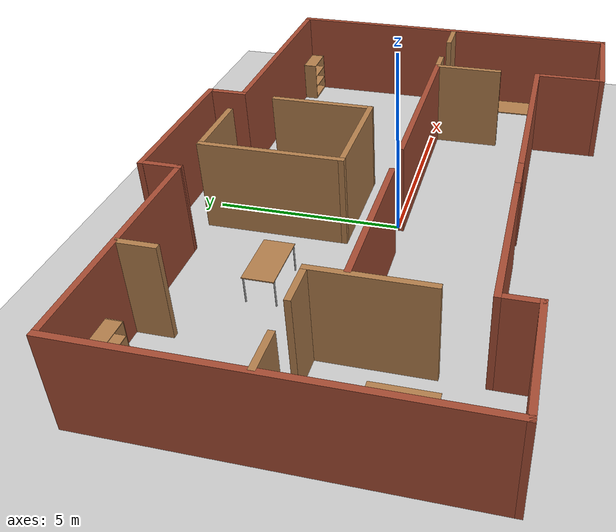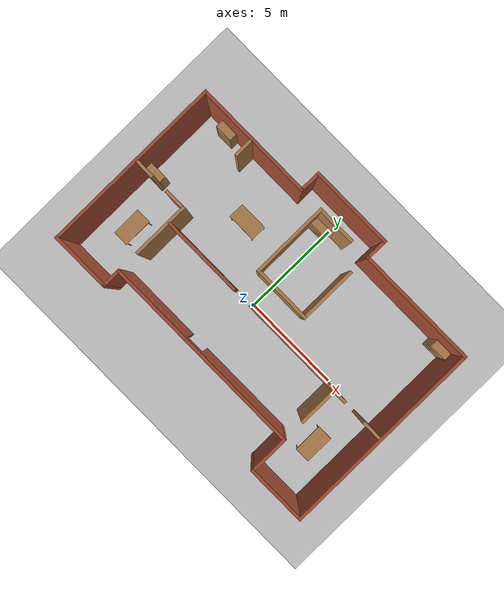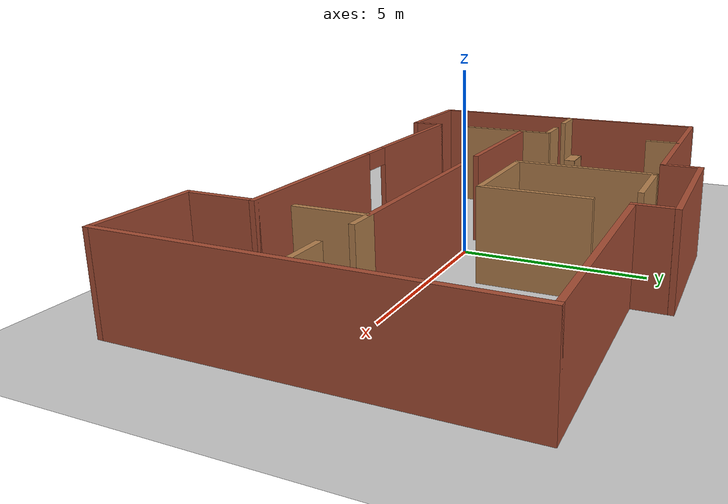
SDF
<sdf version="1.6">
 <world name="default">
  <scene><ambient>0.4 0.4 0.4 1</ambient><background>0.7 0.7 0.7 1</background><shadows>1</shadows></scene>
  <light name="sun" type="directional">
   <pose>0 0 10 0 -0 0</pose>
   <diffuse>0.8 0.8 0.8 1</diffuse>
   <specular>0.2 0.2 0.2 1</specular>
   <attenuation>
    <range>1000</range>
    <constant>0.9</constant>
    <linear>0.01</linear>
    <quadratic>0.001</quadratic>
   </attenuation>
   <direction>-0.5 0.1 -0.9</direction>
  </light>
  <model name="ground_plane">
   <static>1</static>
   <link name="link">
    <collision name="collision">
     <geometry><plane><normal>0 0 1</normal><size>100 100</size></plane></geometry>
     <surface>
      <contact><collide_bitmask>65535</collide_bitmask></contact>
      <friction><ode><mu>100</mu><mu2>50</mu2></ode></friction>
     </surface>
    </collision>
    <visual name="visual">
     <cast_shadows>0</cast_shadows>
     <geometry><plane><normal>0 0 1</normal><size>100 100</size></plane></geometry>
     <material>
      <script><uri>file://media/materials/scripts/gazebo.material</uri><name>Gazebo/Grey</name></script>
     </material>
    </visual>
   </link>
  </model>
  <model name="house_experiment_1">
   <pose>-0.00958 0.481803 0 0 -0 0</pose>
   <link name="Wall_0">
    <collision name="Wall_0_Collision">
     <geometry><box><size>4 0.15 2.5</size></box></geometry>
     <pose>0 0 1.25 0 -0 0</pose>
    </collision>
    <visual name="Wall_0_Visual">
     <pose>0 0 1.25 0 -0 0</pose>
     <geometry><box><size>4 0.15 2.5</size></box></geometry>
     <material>
      <script><uri>file://media/materials/scripts/gazebo.material</uri><name>Gazebo/Bricks</name></script>
      <ambient>1 1 1 1</ambient>
     </material>
     <meta><layer>0</layer></meta>
    </visual>
    <pose>-3.0204 -0.576783 0 0 -0 3.14159</pose>
   </link>
   <link name="Wall_10">
    <collision name="Wall_10_Collision">
     <geometry><box><size>4.195 0.15 2.5</size></box></geometry>
     <pose>0 0 1.25 0 -0 0</pose>
    </collision>
    <visual name="Wall_10_Visual">
     <pose>0 0 1.25 0 -0 0</pose>
     <geometry><box><size>4.195 0.15 2.5</size></box></geometry>
     <material>
      <script><uri>file://media/materials/scripts/gazebo.material</uri><name>Gazebo/Bricks</name></script>
      <ambient>1 1 1 1</ambient>
     </material>
     <meta><layer>0</layer></meta>
    </visual>
    <pose>-0.031569 5.42562 0 0 -0 0</pose>
   </link>
   <link name="Wall_12">
    <collision name="Wall_12_Collision">
     <geometry><box><size>6.05761 0.15 2.5</size></box></geometry>
     <pose>0 0 1.25 0 -0 0</pose>
    </collision>
    <visual name="Wall_12_Visual">
     <pose>0 0 1.25 0 -0 0</pose>
     <geometry><box><size>6.05761 0.15 2.5</size></box></geometry>
     <material>
      <script><uri>file://media/materials/scripts/gazebo.material</uri><name>Gazebo/Bricks</name></script>
      <ambient>1 1 1 1</ambient>
     </material>
     <meta><layer>0</layer></meta>
    </visual>
    <pose>4.9462 4.42438 0 0 -0 0</pose>
   </link>
   <link name="Wall_13">
    <collision name="Wall_13_Collision">
     <geometry><box><size>10 0.15 2.5</size></box></geometry>
     <pose>0 0 1.25 0 -0 0</pose>
    </collision>
    <visual name="Wall_13_Visual">
     <pose>0 0 1.25 0 -0 0</pose>
     <geometry><box><size>10 0.15 2.5</size></box></geometry>
     <material>
      <script><uri>file://media/materials/scripts/gazebo.material</uri><name>Gazebo/Bricks</name></script>
      <ambient>1 1 1 1</ambient>
     </material>
     <meta><layer>0</layer></meta>
    </visual>
    <pose>7.9 -0.50062 0 0 -0 -1.5708</pose>
   </link>
   <link name="Wall_15">
    <collision name="Wall_15_Collision">
     <geometry><box><size>3.02263 0.15 2.5</size></box></geometry>
     <pose>0 0 1.25 0 -0 0</pose>
    </collision>
    <visual name="Wall_15_Visual">
     <pose>0 0 1.25 0 -0 0</pose>
     <geometry><box><size>3.02263 0.15 2.5</size></box></geometry>
     <material>
      <script><uri>file://media/materials/scripts/gazebo.material</uri><name>Gazebo/Bricks</name></script>
      <ambient>1 1 1 1</ambient>
     </material>
     <meta><layer>0</layer></meta>
    </visual>
    <pose>6.46369 -5.42562 0 0 -0 3.14159</pose>
   </link>
   <link name="Wall_17">
    <collision name="Wall_17_Collision">
     <geometry><box><size>5.18251 0.15 2.5</size></box></geometry>
     <pose>0 0 1.25 0 -0 0</pose>
    </collision>
    <visual name="Wall_17_Visual">
     <pose>0 0 1.25 0 -0 0</pose>
     <geometry><box><size>5.18251 0.15 2.5</size></box></geometry>
     <material>
      <script><uri>file://media/materials/scripts/gazebo.material</uri><name>Gazebo/Bricks</name></script>
      <ambient>1 1 1 1</ambient>
     </material>
     <meta><layer>0</layer></meta>
    </visual>
    <pose>2.49363 -0.57562 0 0 -0 3.14159</pose>
   </link>
   <link name="Wall_19">
    <collision name="Wall_19_Collision">
     <geometry><box><size>1 0.15 2.5</size></box></geometry>
     <pose>0 0 1.25 0 -0 0</pose>
    </collision>
    <visual name="Wall_19_Visual">
     <pose>0 0 1.25 0 -0 0</pose>
     <geometry><box><size>1 0.15 2.5</size></box></geometry>
     <material>
      <script><uri>file://media/materials/scripts/gazebo.material</uri><name>Gazebo/Wood</name></script>
      <ambient>1 1 1 1</ambient>
     </material>
     <meta><layer>0</layer></meta>
    </visual>
    <pose>-5.06582 3.95394 0 0 -0 -1.5708</pose>
   </link>
   <link name="Wall_21">
    <collision name="Wall_21_Collision">
     <geometry><box><size>1 0.15 2.5</size></box></geometry>
     <pose>0 0 1.25 0 -0 0</pose>
    </collision>
    <visual name="Wall_21_Visual">
     <pose>0 0 1.25 0 -0 0</pose>
     <geometry><box><size>1 0.15 2.5</size></box></geometry>
     <material>
      <script><uri>file://media/materials/scripts/gazebo.material</uri><name>Gazebo/Wood</name></script>
      <ambient>1 1 1 1</ambient>
     </material>
     <meta><layer>0</layer></meta>
    </visual>
    <pose>-7.40216 0.29684 0 0 -0 0</pose>
   </link>
   <link name="Wall_23">
    <collision name="Wall_23_Collision">
     <geometry><box><size>1 0.15 2.5</size></box></geometry>
     <pose>0 0 1.25 0 -0 0</pose>
    </collision>
    <visual name="Wall_23_Visual">
     <pose>0 0 1.25 0 -0 0</pose>
     <geometry><box><size>1 0.15 2.5</size></box></geometry>
     <material>
      <script><uri>file://media/materials/scripts/gazebo.material</uri><name>Gazebo/Wood</name></script>
      <ambient>1 1 1 1</ambient>
     </material>
     <meta><layer>0</layer></meta>
    </visual>
    <pose>-5.57618 0.29684 0 0 -0 3.14159</pose>
   </link>
   <link name="Wall_25">
    <collision name="Wall_25_Collision">
     <geometry><box><size>0.790119 0.15 2.5</size></box></geometry>
     <pose>0 0 1.25 0 -0 0</pose>
    </collision>
    <visual name="Wall_25_Visual">
     <pose>0 0 1.25 0 -0 0</pose>
     <geometry><box><size>0.790119 0.15 2.5</size></box></geometry>
     <material>
      <script><uri>file://media/materials/scripts/gazebo.material</uri><name>Gazebo/Wood</name></script>
      <ambient>1 1 1 1</ambient>
     </material>
     <meta><layer>0</layer></meta>
    </visual>
    <pose>5.32994 -0.57562 0 0 -0 0</pose>
   </link>
   <link name="Wall_27">
    <collision name="Wall_27_Collision">
     <geometry><box><size>1 0.15 2.5</size></box></geometry>
     <pose>0 0 1.25 0 -0 0</pose>
    </collision>
    <visual name="Wall_27_Visual">
     <pose>0 0 1.25 0 -0 0</pose>
     <geometry><box><size>1 0.15 2.5</size></box></geometry>
     <material>
      <script><uri>file://media/materials/scripts/gazebo.material</uri><name>Gazebo/Wood</name></script>
      <ambient>1 1 1 1</ambient>
     </material>
     <meta><layer>0</layer></meta>
    </visual>
    <pose>7.34898 -0.612643 0 0 -0 3.14159</pose>
   </link>
   <link name="Wall_36">
    <collision name="Wall_36_Collision">
     <geometry><box><size>1 0.15 2.5</size></box></geometry>
     <pose>0 0 1.25 0 -0 0</pose>
    </collision>
    <visual name="Wall_36_Visual">
     <pose>0 0 1.25 0 -0 0</pose>
     <geometry><box><size>1 0.15 2.5</size></box></geometry>
     <material>
      <script><uri>file://media/materials/scripts/gazebo.material</uri><name>Gazebo/Bricks</name></script>
      <ambient>1 1 1 1</ambient>
     </material>
     <meta><layer>0</layer></meta>
    </visual>
    <pose>-2.05 4.86687 0 0 -0 1.5708</pose>
   </link>
   <link name="Wall_38">
    <collision name="Wall_38_Collision">
     <geometry><box><size>1 0.15 2.5</size></box></geometry>
     <pose>0 0 1.25 0 -0 0</pose>
    </collision>
    <visual name="Wall_38_Visual">
     <pose>0 0 1.25 0 -0 0</pose>
     <geometry><box><size>1 0.15 2.5</size></box></geometry>
     <material>
      <script><uri>file://media/materials/scripts/gazebo.material</uri><name>Gazebo/Bricks</name></script>
      <ambient>1 1 1 1</ambient>
     </material>
     <meta><layer>0</layer></meta>
    </visual>
    <pose>1.99239 4.84938 0 0 -0 1.5708</pose>
   </link>
   <link name="Wall_4">
    <collision name="Wall_4_Collision">
     <geometry><box><size>3 0.15 2.5</size></box></geometry>
     <pose>0 0 1.25 0 -0 0</pose>
    </collision>
    <visual name="Wall_4_Visual">
     <pose>0 0 1.25 0 -0 0</pose>
     <geometry><box><size>3 0.15 2.5</size></box></geometry>
     <material>
      <script><uri>file://media/materials/scripts/gazebo.material</uri><name>Gazebo/Bricks</name></script>
      <ambient>1 1 1 1</ambient>
     </material>
     <meta><layer>0</layer></meta>
    </visual>
    <pose>-6.475 -4.42562 0 0 -0 3.14159</pose>
   </link>
   <link name="Wall_40">
    <collision name="Wall_40_Collision">
     <geometry><box><size>3.84549 0.15 2.5</size></box></geometry>
     <pose>0 0 1.25 0 -0 0</pose>
    </collision>
    <visual name="Wall_40_Visual">
     <pose>0 0 1.25 0 -0 0</pose>
     <geometry><box><size>3.84549 0.15 2.5</size></box></geometry>
     <material>
      <script><uri>file://media/materials/scripts/gazebo.material</uri><name>Gazebo/Wood</name></script>
      <ambient>1 1 1 1</ambient>
     </material>
     <meta><layer>0</layer></meta>
    </visual>
    <pose>-0.885356 2.57359 0 0 -0 1.5708</pose>
   </link>
   <link name="Wall_46">
    <collision name="Wall_46_Collision">
     <geometry><box><size>2.9508 0.15 2.5</size></box></geometry>
     <pose>0 0 1.25 0 -0 0</pose>
    </collision>
    <visual name="Wall_46_Visual">
     <pose>0 0 1.25 0 -0 0</pose>
     <geometry><box><size>2.9508 0.15 2.5</size></box></geometry>
     <material>
      <script><uri>file://media/materials/scripts/gazebo.material</uri><name>Gazebo/Wood</name></script>
      <ambient>1 1 1 1</ambient>
     </material>
     <meta><layer>0</layer></meta>
    </visual>
    <pose>0.515046 0.725904 0 0 -0 0</pose>
   </link>
   <link name="Wall_47">
    <collision name="Wall_47_Collision">
     <geometry><box><size>2.86746 0.15 2.5</size></box></geometry>
     <pose>0 0 1.25 0 -0 0</pose>
    </collision>
    <visual name="Wall_47_Visual">
     <pose>0 0 1.25 0 -0 0</pose>
     <geometry><box><size>2.86746 0.15 2.5</size></box></geometry>
     <material>
      <script><uri>file://media/materials/scripts/gazebo.material</uri><name>Gazebo/Wood</name></script>
      <ambient>1 1 1 1</ambient>
     </material>
     <meta><layer>0</layer></meta>
    </visual>
    <pose>1.92092 2.08463 0 0 -0 1.57097</pose>
   </link>
   <link name="Wall_49">
    <collision name="Wall_49_Collision">
     <geometry><box><size>2 0.15 2.5</size></box></geometry>
     <pose>0 0 1.25 0 -0 0</pose>
    </collision>
    <visual name="Wall_49_Visual">
     <pose>0 0 1.25 0 -0 0</pose>
     <geometry><box><size>2 0.15 2.5</size></box></geometry>
     <material>
      <script><uri>file://media/materials/scripts/gazebo.material</uri><name>Gazebo/Wood</name></script>
      <ambient>1 1 1 1</ambient>
     </material>
     <meta><layer>0</layer></meta>
    </visual>
    <pose>0.039644 4.42127 0 0 -0 0</pose>
   </link>
   <link name="Wall_6">
    <collision name="Wall_6_Collision">
     <geometry><box><size>9.01749 0.15 2.5</size></box></geometry>
     <pose>0 0 1.25 0 -0 0</pose>
    </collision>
    <visual name="Wall_6_Visual">
     <pose>0 0 1.25 0 -0 0</pose>
     <geometry><box><size>9.01749 0.15 2.5</size></box></geometry>
     <material>
      <script><uri>file://media/materials/scripts/gazebo.material</uri><name>Gazebo/Bricks</name></script>
      <ambient>1 1 1 1</ambient>
     </material>
     <meta><layer>0</layer></meta>
    </visual>
    <pose>-7.9 0.008125 0 0 -0 1.5708</pose>
   </link>
   <link name="Wall_8">
    <collision name="Wall_8_Collision">
     <geometry><box><size>6 0.15 2.5</size></box></geometry>
     <pose>0 0 1.25 0 -0 0</pose>
    </collision>
    <visual name="Wall_8_Visual">
     <pose>0 0 1.25 0 -0 0</pose>
     <geometry><box><size>6 0.15 2.5</size></box></geometry>
     <material>
      <script><uri>file://media/materials/scripts/gazebo.material</uri><name>Gazebo/Bricks</name></script>
      <ambient>1 1 1 1</ambient>
     </material>
     <meta><layer>0</layer></meta>
    </visual>
    <pose>-4.975 4.44187 0 0 -0 0</pose>
   </link>
   <static>1</static>
  </model>
  <physics name="default_physics" default="0" type="ode">
   <real_time_update_rate>1000</real_time_update_rate>
   <max_step_size>0.001</max_step_size>
   <real_time_factor>1</real_time_factor>
   <ode>
    <solver>
     <type>quick</type>
     <iters>150</iters>
     <precon_iters>0</precon_iters>
     <sor>1.4</sor>
     <use_dynamic_moi_rescaling>1</use_dynamic_moi_rescaling>
    </solver>
    <constraints>
     <cfm>1e-05</cfm>
     <erp>0.2</erp>
     <contact_max_correcting_vel>2000</contact_max_correcting_vel>
     <contact_surface_layer>0.01</contact_surface_layer>
    </constraints>
   </ode>
  </physics>
  <gravity>0 0 -9.8</gravity>
  <magnetic_field>6e-06 2.3e-05 -4.2e-05</magnetic_field>
  <atmosphere type="adiabatic"/>
  <audio><device>default</device></audio>
  <spherical_coordinates>
   <surface_model>EARTH_WGS84</surface_model>
   <latitude_deg>0</latitude_deg>
   <longitude_deg>0</longitude_deg>
   <elevation>0</elevation>
   <heading_deg>0</heading_deg>
  </spherical_coordinates>
  <model name="bookshelf">
   <static>1</static>
   <link name="link">
    <inertial><mass>1</mass></inertial>
    <collision name="back">
     <pose>0 0.005 0.6 0 -0 0</pose>
     <geometry><box><size>0.9 0.01 1.2</size></box></geometry>
    </collision>
    <visual name="visual1">
     <pose>0 0.005 0.6 0 -0 0</pose>
     <geometry><box><size>0.9 0.01 1.2</size></box></geometry>
     <material>
      <script><uri>file://media/materials/scripts/gazebo.material</uri><name>Gazebo/Wood</name></script>
     </material>
    </visual>
    <collision name="left_side">
     <pose>0.45 -0.195 0.6 0 -0 0</pose>
     <geometry><box><size>0.02 0.4 1.2</size></box></geometry>
    </collision>
    <visual name="visual2">
     <pose>0.45 -0.195 0.6 0 -0 0</pose>
     <geometry><box><size>0.02 0.4 1.2</size></box></geometry>
     <material>
      <script><uri>file://media/materials/scripts/gazebo.material</uri><name>Gazebo/Wood</name></script>
     </material>
    </visual>
    <collision name="right_side">
     <pose>-0.45 -0.195 0.6 0 -0 0</pose>
     <geometry><box><size>0.02 0.4 1.2</size></box></geometry>
    </collision>
    <visual name="visual3">
     <pose>-0.45 -0.195 0.6 0 -0 0</pose>
     <geometry><box><size>0.02 0.4 1.2</size></box></geometry>
     <material>
      <script><uri>file://media/materials/scripts/gazebo.material</uri><name>Gazebo/Wood</name></script>
     </material>
    </visual>
    <collision name="bottom">
     <pose>0 -0.195 0.03 0 -0 0</pose>
     <geometry><box><size>0.88 0.4 0.06</size></box></geometry>
    </collision>
    <visual name="visual4">
     <pose>0 -0.195 0.03 0 -0 0</pose>
     <geometry><box><size>0.88 0.4 0.06</size></box></geometry>
     <material>
      <script><uri>file://media/materials/scripts/gazebo.material</uri><name>Gazebo/Wood</name></script>
     </material>
    </visual>
    <collision name="top">
     <pose>0 -0.195 1.19 0 -0 0</pose>
     <geometry><box><size>0.88 0.4 0.02</size></box></geometry>
    </collision>
    <visual name="visual5">
     <pose>0 -0.195 1.19 0 -0 0</pose>
     <geometry><box><size>0.88 0.4 0.02</size></box></geometry>
     <material>
      <script><uri>file://media/materials/scripts/gazebo.material</uri><name>Gazebo/Wood</name></script>
     </material>
    </visual>
    <collision name="low_shelf">
     <pose>0 -0.195 0.43 0 -0 0</pose>
     <geometry><box><size>0.88 0.4 0.02</size></box></geometry>
    </collision>
    <visual name="visual6">
     <pose>0 -0.195 0.43 0 -0 0</pose>
     <geometry><box><size>0.88 0.4 0.02</size></box></geometry>
     <material>
      <script><uri>file://media/materials/scripts/gazebo.material</uri><name>Gazebo/Wood</name></script>
     </material>
    </visual>
    <collision name="high_shelf">
     <pose>0 -0.195 0.8 0 -0 0</pose>
     <geometry><box><size>0.88 0.4 0.02</size></box></geometry>
    </collision>
    <visual name="visual7">
     <pose>0 -0.195 0.8 0 -0 0</pose>
     <geometry><box><size>0.88 0.4 0.02</size></box></geometry>
     <material>
      <script><uri>file://media/materials/scripts/gazebo.material</uri><name>Gazebo/Wood</name></script>
     </material>
    </visual>
   </link>
   <pose>-6.49684 4.84675 0 0 -0 0</pose>
  </model>
  <model name="bookshelf_0">
   <static>1</static>
   <link name="link">
    <inertial><mass>1</mass></inertial>
    <collision name="back">
     <pose>0 0.005 0.6 0 -0 0</pose>
     <geometry><box><size>0.9 0.01 1.2</size></box></geometry>
    </collision>
    <visual name="visual1">
     <pose>0 0.005 0.6 0 -0 0</pose>
     <geometry><box><size>0.9 0.01 1.2</size></box></geometry>
     <material>
      <script><uri>file://media/materials/scripts/gazebo.material</uri><name>Gazebo/Wood</name></script>
     </material>
    </visual>
    <collision name="left_side">
     <pose>0.45 -0.195 0.6 0 -0 0</pose>
     <geometry><box><size>0.02 0.4 1.2</size></box></geometry>
    </collision>
    <visual name="visual2">
     <pose>0.45 -0.195 0.6 0 -0 0</pose>
     <geometry><box><size>0.02 0.4 1.2</size></box></geometry>
     <material>
      <script><uri>file://media/materials/scripts/gazebo.material</uri><name>Gazebo/Wood</name></script>
     </material>
    </visual>
    <collision name="right_side">
     <pose>-0.45 -0.195 0.6 0 -0 0</pose>
     <geometry><box><size>0.02 0.4 1.2</size></box></geometry>
    </collision>
    <visual name="visual3">
     <pose>-0.45 -0.195 0.6 0 -0 0</pose>
     <geometry><box><size>0.02 0.4 1.2</size></box></geometry>
     <material>
      <script><uri>file://media/materials/scripts/gazebo.material</uri><name>Gazebo/Wood</name></script>
     </material>
    </visual>
    <collision name="bottom">
     <pose>0 -0.195 0.03 0 -0 0</pose>
     <geometry><box><size>0.88 0.4 0.06</size></box></geometry>
    </collision>
    <visual name="visual4">
     <pose>0 -0.195 0.03 0 -0 0</pose>
     <geometry><box><size>0.88 0.4 0.06</size></box></geometry>
     <material>
      <script><uri>file://media/materials/scripts/gazebo.material</uri><name>Gazebo/Wood</name></script>
     </material>
    </visual>
    <collision name="top">
     <pose>0 -0.195 1.19 0 -0 0</pose>
     <geometry><box><size>0.88 0.4 0.02</size></box></geometry>
    </collision>
    <visual name="visual5">
     <pose>0 -0.195 1.19 0 -0 0</pose>
     <geometry><box><size>0.88 0.4 0.02</size></box></geometry>
     <material>
      <script><uri>file://media/materials/scripts/gazebo.material</uri><name>Gazebo/Wood</name></script>
     </material>
    </visual>
    <collision name="low_shelf">
     <pose>0 -0.195 0.43 0 -0 0</pose>
     <geometry><box><size>0.88 0.4 0.02</size></box></geometry>
    </collision>
    <visual name="visual6">
     <pose>0 -0.195 0.43 0 -0 0</pose>
     <geometry><box><size>0.88 0.4 0.02</size></box></geometry>
     <material>
      <script><uri>file://media/materials/scripts/gazebo.material</uri><name>Gazebo/Wood</name></script>
     </material>
    </visual>
    <collision name="high_shelf">
     <pose>0 -0.195 0.8 0 -0 0</pose>
     <geometry><box><size>0.88 0.4 0.02</size></box></geometry>
    </collision>
    <visual name="visual7">
     <pose>0 -0.195 0.8 0 -0 0</pose>
     <geometry><box><size>0.88 0.4 0.02</size></box></geometry>
     <material>
      <script><uri>file://media/materials/scripts/gazebo.material</uri><name>Gazebo/Wood</name></script>
     </material>
    </visual>
   </link>
   <pose>-7.37238 0.826833 0 0 -0 3.13997</pose>
  </model>
  <model name="table">
   <static>1</static>
   <link name="link">
    <collision name="surface">
     <pose>0 0 1 0 -0 0</pose>
     <geometry><box><size>1.5 0.8 0.03</size></box></geometry>
     <surface><friction><ode><mu>0.6</mu><mu2>0.6</mu2></ode></friction></surface>
    </collision>
    <visual name="visual1">
     <pose>0 0 1 0 -0 0</pose>
     <geometry><box><size>1.5 0.8 0.03</size></box></geometry>
     <material>
      <script><uri>file://media/materials/scripts/gazebo.material</uri><name>Gazebo/Wood</name></script>
     </material>
    </visual>
    <collision name="front_left_leg">
     <pose>0.68 0.38 0.5 0 -0 0</pose>
     <geometry><cylinder><radius>0.02</radius><length>1</length></cylinder></geometry>
    </collision>
    <visual name="front_left_leg">
     <pose>0.68 0.38 0.5 0 -0 0</pose>
     <geometry><cylinder><radius>0.02</radius><length>1</length></cylinder></geometry>
     <material>
      <script><uri>file://media/materials/scripts/gazebo.material</uri><name>Gazebo/Grey</name></script>
     </material>
    </visual>
    <collision name="front_right_leg">
     <pose>0.68 -0.38 0.5 0 -0 0</pose>
     <geometry><cylinder><radius>0.02</radius><length>1</length></cylinder></geometry>
    </collision>
    <visual name="front_right_leg">
     <pose>0.68 -0.38 0.5 0 -0 0</pose>
     <geometry><cylinder><radius>0.02</radius><length>1</length></cylinder></geometry>
     <material>
      <script><uri>file://media/materials/scripts/gazebo.material</uri><name>Gazebo/Grey</name></script>
     </material>
    </visual>
    <collision name="back_right_leg">
     <pose>-0.68 -0.38 0.5 0 -0 0</pose>
     <geometry><cylinder><radius>0.02</radius><length>1</length></cylinder></geometry>
    </collision>
    <visual name="back_right_leg">
     <pose>-0.68 -0.38 0.5 0 -0 0</pose>
     <geometry><cylinder><radius>0.02</radius><length>1</length></cylinder></geometry>
     <material>
      <script><uri>file://media/materials/scripts/gazebo.material</uri><name>Gazebo/Grey</name></script>
     </material>
    </visual>
    <collision name="back_left_leg">
     <pose>-0.68 0.38 0.5 0 -0 0</pose>
     <geometry><cylinder><radius>0.02</radius><length>1</length></cylinder></geometry>
    </collision>
    <visual name="back_left_leg">
     <pose>-0.68 0.38 0.5 0 -0 0</pose>
     <geometry><cylinder><radius>0.02</radius><length>1</length></cylinder></geometry>
     <material>
      <script><uri>file://media/materials/scripts/gazebo.material</uri><name>Gazebo/Grey</name></script>
     </material>
    </visual>
   </link>
   <pose>-2.94843 2.47995 -0.263685 0 -0 0</pose>
  </model>
  <model name="table_0">
   <static>1</static>
   <link name="link">
    <collision name="surface">
     <pose>0 0 1 0 -0 0</pose>
     <geometry><box><size>1.5 0.8 0.03</size></box></geometry>
     <surface><friction><ode><mu>0.6</mu><mu2>0.6</mu2></ode></friction></surface>
    </collision>
    <visual name="visual1">
     <pose>0 0 1 0 -0 0</pose>
     <geometry><box><size>1.5 0.8 0.03</size></box></geometry>
     <material>
      <script><uri>file://media/materials/scripts/gazebo.material</uri><name>Gazebo/Wood</name></script>
     </material>
    </visual>
    <collision name="front_left_leg">
     <pose>0.68 0.38 0.5 0 -0 0</pose>
     <geometry><cylinder><radius>0.02</radius><length>1</length></cylinder></geometry>
    </collision>
    <visual name="front_left_leg">
     <pose>0.68 0.38 0.5 0 -0 0</pose>
     <geometry><cylinder><radius>0.02</radius><length>1</length></cylinder></geometry>
     <material>
      <script><uri>file://media/materials/scripts/gazebo.material</uri><name>Gazebo/Grey</name></script>
     </material>
    </visual>
    <collision name="front_right_leg">
     <pose>0.68 -0.38 0.5 0 -0 0</pose>
     <geometry><cylinder><radius>0.02</radius><length>1</length></cylinder></geometry>
    </collision>
    <visual name="front_right_leg">
     <pose>0.68 -0.38 0.5 0 -0 0</pose>
     <geometry><cylinder><radius>0.02</radius><length>1</length></cylinder></geometry>
     <material>
      <script><uri>file://media/materials/scripts/gazebo.material</uri><name>Gazebo/Grey</name></script>
     </material>
    </visual>
    <collision name="back_right_leg">
     <pose>-0.68 -0.38 0.5 0 -0 0</pose>
     <geometry><cylinder><radius>0.02</radius><length>1</length></cylinder></geometry>
    </collision>
    <visual name="back_right_leg">
     <pose>-0.68 -0.38 0.5 0 -0 0</pose>
     <geometry><cylinder><radius>0.02</radius><length>1</length></cylinder></geometry>
     <material>
      <script><uri>file://media/materials/scripts/gazebo.material</uri><name>Gazebo/Grey</name></script>
     </material>
    </visual>
    <collision name="back_left_leg">
     <pose>-0.68 0.38 0.5 0 -0 0</pose>
     <geometry><cylinder><radius>0.02</radius><length>1</length></cylinder></geometry>
    </collision>
    <visual name="back_left_leg">
     <pose>-0.68 0.38 0.5 0 -0 0</pose>
     <geometry><cylinder><radius>0.02</radius><length>1</length></cylinder></geometry>
     <material>
      <script><uri>file://media/materials/scripts/gazebo.material</uri><name>Gazebo/Grey</name></script>
     </material>
    </visual>
   </link>
   <pose>-6.50029 -1.48605 -0.289889 0 -0 1.57426</pose>
  </model>
  <model name="table_1">
   <static>1</static>
   <link name="link">
    <collision name="surface">
     <pose>0 0 1 0 -0 0</pose>
     <geometry><box><size>1.5 0.8 0.03</size></box></geometry>
     <surface><friction><ode><mu>0.6</mu><mu2>0.6</mu2></ode></friction></surface>
    </collision>
    <visual name="visual1">
     <pose>0 0 1 0 -0 0</pose>
     <geometry><box><size>1.5 0.8 0.03</size></box></geometry>
     <material>
      <script><uri>file://media/materials/scripts/gazebo.material</uri><name>Gazebo/Wood</name></script>
     </material>
    </visual>
    <collision name="front_left_leg">
     <pose>0.68 0.38 0.5 0 -0 0</pose>
     <geometry><cylinder><radius>0.02</radius><length>1</length></cylinder></geometry>
    </collision>
    <visual name="front_left_leg">
     <pose>0.68 0.38 0.5 0 -0 0</pose>
     <geometry><cylinder><radius>0.02</radius><length>1</length></cylinder></geometry>
     <material>
      <script><uri>file://media/materials/scripts/gazebo.material</uri><name>Gazebo/Grey</name></script>
     </material>
    </visual>
    <collision name="front_right_leg">
     <pose>0.68 -0.38 0.5 0 -0 0</pose>
     <geometry><cylinder><radius>0.02</radius><length>1</length></cylinder></geometry>
    </collision>
    <visual name="front_right_leg">
     <pose>0.68 -0.38 0.5 0 -0 0</pose>
     <geometry><cylinder><radius>0.02</radius><length>1</length></cylinder></geometry>
     <material>
      <script><uri>file://media/materials/scripts/gazebo.material</uri><name>Gazebo/Grey</name></script>
     </material>
    </visual>
    <collision name="back_right_leg">
     <pose>-0.68 -0.38 0.5 0 -0 0</pose>
     <geometry><cylinder><radius>0.02</radius><length>1</length></cylinder></geometry>
    </collision>
    <visual name="back_right_leg">
     <pose>-0.68 -0.38 0.5 0 -0 0</pose>
     <geometry><cylinder><radius>0.02</radius><length>1</length></cylinder></geometry>
     <material>
      <script><uri>file://media/materials/scripts/gazebo.material</uri><name>Gazebo/Grey</name></script>
     </material>
    </visual>
    <collision name="back_left_leg">
     <pose>-0.68 0.38 0.5 0 -0 0</pose>
     <geometry><cylinder><radius>0.02</radius><length>1</length></cylinder></geometry>
    </collision>
    <visual name="back_left_leg">
     <pose>-0.68 0.38 0.5 0 -0 0</pose>
     <geometry><cylinder><radius>0.02</radius><length>1</length></cylinder></geometry>
     <material>
      <script><uri>file://media/materials/scripts/gazebo.material</uri><name>Gazebo/Grey</name></script>
     </material>
    </visual>
   </link>
   <pose>6.51975 -2.51867 -0.425308 0 -0 1.57697</pose>
  </model>
  <model name="bookshelf_1">
   <static>1</static>
   <link name="link">
    <inertial><mass>1</mass></inertial>
    <collision name="back">
     <pose>0 0.005 0.6 0 -0 0</pose>
     <geometry><box><size>0.9 0.01 1.2</size></box></geometry>
    </collision>
    <visual name="visual1">
     <pose>0 0.005 0.6 0 -0 0</pose>
     <geometry><box><size>0.9 0.01 1.2</size></box></geometry>
     <material>
      <script><uri>file://media/materials/scripts/gazebo.material</uri><name>Gazebo/Wood</name></script>
     </material>
    </visual>
    <collision name="left_side">
     <pose>0.45 -0.195 0.6 0 -0 0</pose>
     <geometry><box><size>0.02 0.4 1.2</size></box></geometry>
    </collision>
    <visual name="visual2">
     <pose>0.45 -0.195 0.6 0 -0 0</pose>
     <geometry><box><size>0.02 0.4 1.2</size></box></geometry>
     <material>
      <script><uri>file://media/materials/scripts/gazebo.material</uri><name>Gazebo/Wood</name></script>
     </material>
    </visual>
    <collision name="right_side">
     <pose>-0.45 -0.195 0.6 0 -0 0</pose>
     <geometry><box><size>0.02 0.4 1.2</size></box></geometry>
    </collision>
    <visual name="visual3">
     <pose>-0.45 -0.195 0.6 0 -0 0</pose>
     <geometry><box><size>0.02 0.4 1.2</size></box></geometry>
     <material>
      <script><uri>file://media/materials/scripts/gazebo.material</uri><name>Gazebo/Wood</name></script>
     </material>
    </visual>
    <collision name="bottom">
     <pose>0 -0.195 0.03 0 -0 0</pose>
     <geometry><box><size>0.88 0.4 0.06</size></box></geometry>
    </collision>
    <visual name="visual4">
     <pose>0 -0.195 0.03 0 -0 0</pose>
     <geometry><box><size>0.88 0.4 0.06</size></box></geometry>
     <material>
      <script><uri>file://media/materials/scripts/gazebo.material</uri><name>Gazebo/Wood</name></script>
     </material>
    </visual>
    <collision name="top">
     <pose>0 -0.195 1.19 0 -0 0</pose>
     <geometry><box><size>0.88 0.4 0.02</size></box></geometry>
    </collision>
    <visual name="visual5">
     <pose>0 -0.195 1.19 0 -0 0</pose>
     <geometry><box><size>0.88 0.4 0.02</size></box></geometry>
     <material>
      <script><uri>file://media/materials/scripts/gazebo.material</uri><name>Gazebo/Wood</name></script>
     </material>
    </visual>
    <collision name="low_shelf">
     <pose>0 -0.195 0.43 0 -0 0</pose>
     <geometry><box><size>0.88 0.4 0.02</size></box></geometry>
    </collision>
    <visual name="visual6">
     <pose>0 -0.195 0.43 0 -0 0</pose>
     <geometry><box><size>0.88 0.4 0.02</size></box></geometry>
     <material>
      <script><uri>file://media/materials/scripts/gazebo.material</uri><name>Gazebo/Wood</name></script>
     </material>
    </visual>
    <collision name="high_shelf">
     <pose>0 -0.195 0.8 0 -0 0</pose>
     <geometry><box><size>0.88 0.4 0.02</size></box></geometry>
    </collision>
    <visual name="visual7">
     <pose>0 -0.195 0.8 0 -0 0</pose>
     <geometry><box><size>0.88 0.4 0.02</size></box></geometry>
     <material>
      <script><uri>file://media/materials/scripts/gazebo.material</uri><name>Gazebo/Wood</name></script>
     </material>
    </visual>
   </link>
   <pose>-0.380414 4.83231 0 0 -0 0</pose>
  </model>
  <model name="bookshelf_2">
   <static>1</static>
   <link name="link">
    <inertial><mass>1</mass></inertial>
    <collision name="back">
     <pose>0 0.005 0.6 0 -0 0</pose>
     <geometry><box><size>0.9 0.01 1.2</size></box></geometry>
    </collision>
    <visual name="visual1">
     <pose>0 0.005 0.6 0 -0 0</pose>
     <geometry><box><size>0.9 0.01 1.2</size></box></geometry>
     <material>
      <script><uri>file://media/materials/scripts/gazebo.material</uri><name>Gazebo/Wood</name></script>
     </material>
    </visual>
    <collision name="left_side">
     <pose>0.45 -0.195 0.6 0 -0 0</pose>
     <geometry><box><size>0.02 0.4 1.2</size></box></geometry>
    </collision>
    <visual name="visual2">
     <pose>0.45 -0.195 0.6 0 -0 0</pose>
     <geometry><box><size>0.02 0.4 1.2</size></box></geometry>
     <material>
      <script><uri>file://media/materials/scripts/gazebo.material</uri><name>Gazebo/Wood</name></script>
     </material>
    </visual>
    <collision name="right_side">
     <pose>-0.45 -0.195 0.6 0 -0 0</pose>
     <geometry><box><size>0.02 0.4 1.2</size></box></geometry>
    </collision>
    <visual name="visual3">
     <pose>-0.45 -0.195 0.6 0 -0 0</pose>
     <geometry><box><size>0.02 0.4 1.2</size></box></geometry>
     <material>
      <script><uri>file://media/materials/scripts/gazebo.material</uri><name>Gazebo/Wood</name></script>
     </material>
    </visual>
    <collision name="bottom">
     <pose>0 -0.195 0.03 0 -0 0</pose>
     <geometry><box><size>0.88 0.4 0.06</size></box></geometry>
    </collision>
    <visual name="visual4">
     <pose>0 -0.195 0.03 0 -0 0</pose>
     <geometry><box><size>0.88 0.4 0.06</size></box></geometry>
     <material>
      <script><uri>file://media/materials/scripts/gazebo.material</uri><name>Gazebo/Wood</name></script>
     </material>
    </visual>
    <collision name="top">
     <pose>0 -0.195 1.19 0 -0 0</pose>
     <geometry><box><size>0.88 0.4 0.02</size></box></geometry>
    </collision>
    <visual name="visual5">
     <pose>0 -0.195 1.19 0 -0 0</pose>
     <geometry><box><size>0.88 0.4 0.02</size></box></geometry>
     <material>
      <script><uri>file://media/materials/scripts/gazebo.material</uri><name>Gazebo/Wood</name></script>
     </material>
    </visual>
    <collision name="low_shelf">
     <pose>0 -0.195 0.43 0 -0 0</pose>
     <geometry><box><size>0.88 0.4 0.02</size></box></geometry>
    </collision>
    <visual name="visual6">
     <pose>0 -0.195 0.43 0 -0 0</pose>
     <geometry><box><size>0.88 0.4 0.02</size></box></geometry>
     <material>
      <script><uri>file://media/materials/scripts/gazebo.material</uri><name>Gazebo/Wood</name></script>
     </material>
    </visual>
    <collision name="high_shelf">
     <pose>0 -0.195 0.8 0 -0 0</pose>
     <geometry><box><size>0.88 0.4 0.02</size></box></geometry>
    </collision>
    <visual name="visual7">
     <pose>0 -0.195 0.8 0 -0 0</pose>
     <geometry><box><size>0.88 0.4 0.02</size></box></geometry>
     <material>
      <script><uri>file://media/materials/scripts/gazebo.material</uri><name>Gazebo/Wood</name></script>
     </material>
    </visual>
   </link>
   <pose>7.36015 4.82047 0 0 -0 0</pose>
  </model>
  <model name="house_modified_1">
   <pose>-0.02 -2.019 0 0 -0 0</pose>
   <link name="Wall_0">
    <collision name="Wall_0_Collision">
     <geometry><box><size>2.858 0.15 2.5</size></box></geometry>
     <pose>0 0 1.25 0 -0 0</pose>
    </collision>
    <visual name="Wall_0_Visual">
     <pose>0 0 1.25 0 -0 0</pose>
     <geometry><box><size>2.858 0.15 2.5</size></box></geometry>
     <material>
      <script><uri>file://media/materials/scripts/gazebo.material</uri><name>Gazebo/Wood</name></script>
      <ambient>1 1 1 1</ambient>
     </material>
     <meta><layer>0</layer></meta>
    </visual>
    <pose>-5.031 1.447 0 0 -0 -1.5708</pose>
   </link>
   <link name="Wall_2">
    <collision name="Wall_2_Collision">
     <geometry><box><size>1 0.15 2.5</size></box></geometry>
     <pose>0 0 1.25 0 -0 0</pose>
    </collision>
    <visual name="Wall_2_Visual">
     <pose>0 0 1.25 0 -0 0</pose>
     <geometry><box><size>1 0.15 2.5</size></box></geometry>
     <material>
      <script><uri>file://media/materials/scripts/gazebo.material</uri><name>Gazebo/Bricks</name></script>
      <ambient>1 1 1 1</ambient>
     </material>
     <meta><layer>0</layer></meta>
    </visual>
    <pose>-5.04 -1.476 0 0 -0 -1.5708</pose>
   </link>
   <link name="Wall_4">
    <collision name="Wall_4_Collision">
     <geometry><box><size>1.9 0.15 2.5</size></box></geometry>
     <pose>0 0 1.25 0 -0 0</pose>
    </collision>
    <visual name="Wall_4_Visual">
     <pose>0 0 1.25 0 -0 0</pose>
     <geometry><box><size>1.9 0.15 2.5</size></box></geometry>
     <material>
      <script><uri>file://media/materials/scripts/gazebo.material</uri><name>Gazebo/Bricks</name></script>
      <ambient>1 1 1 1</ambient>
     </material>
     <meta><layer>0</layer></meta>
    </visual>
    <pose>5.04 -1.926 0 0 -0 -1.5708</pose>
   </link>
   <link name="Wall_6">
    <collision name="Wall_6_Collision">
     <geometry><box><size>1.9 0.15 2.5</size></box></geometry>
     <pose>0 0 1.25 0 -0 0</pose>
    </collision>
    <visual name="Wall_6_Visual">
     <pose>0 0 1.25 0 -0 0</pose>
     <geometry><box><size>1.9 0.15 2.5</size></box></geometry>
     <material>
      <script><uri>file://media/materials/scripts/gazebo.material</uri><name>Gazebo/Wood</name></script>
      <ambient>1 1 1 1</ambient>
     </material>
     <meta><layer>0</layer></meta>
    </visual>
    <pose>5.04 0.964 0 0 -0 1.5708</pose>
   </link>
   <link name="Wall_8">
    <pose>-0 -1.051 0 0 -0 0</pose>
    <visual name="Wall_8_Visual_0">
     <pose>-3.05552 0 1.25 0 -0 0</pose>
     <geometry><box><size>4.11897 0.15 2.5</size></box></geometry>
     <material>
      <script><uri>file://media/materials/scripts/gazebo.material</uri><name>Gazebo/Bricks</name></script>
      <ambient>1 1 1 1</ambient>
     </material>
     <meta><layer>0</layer></meta>
    </visual>
    <collision name="Wall_8_Collision_0">
     <geometry><box><size>4.11897 0.15 2.5</size></box></geometry>
     <pose>-3.05552 0 1.25 0 -0 0</pose>
    </collision>
    <visual name="Wall_8_Visual_1">
     <pose>2.50949 0 1.25 0 -0 0</pose>
     <geometry><box><size>5.21103 0.15 2.5</size></box></geometry>
     <material>
      <script><uri>file://media/materials/scripts/gazebo.material</uri><name>Gazebo/Bricks</name></script>
      <ambient>1 1 1 1</ambient>
     </material>
     <meta><layer>0</layer></meta>
    </visual>
    <collision name="Wall_8_Collision_1">
     <geometry><box><size>5.21103 0.15 2.5</size></box></geometry>
     <pose>2.50949 0 1.25 0 -0 0</pose>
    </collision>
    <visual name="Wall_8_Visual_2">
     <pose>-0.54603 0 2.25 0 -0 0</pose>
     <geometry><box><size>0.9 0.15 0.5</size></box></geometry>
     <material>
      <script><uri>file://media/materials/scripts/gazebo.material</uri><name>Gazebo/Bricks</name></script>
      <ambient>1 1 1 1</ambient>
     </material>
     <meta><layer>0</layer></meta>
    </visual>
    <collision name="Wall_8_Collision_2">
     <geometry><box><size>0.9 0.15 0.5</size></box></geometry>
     <pose>-0.54603 0 2.25 0 -0 0</pose>
    </collision>
   </link>
   <static>1</static>
  </model>
 </world>
</sdf>
